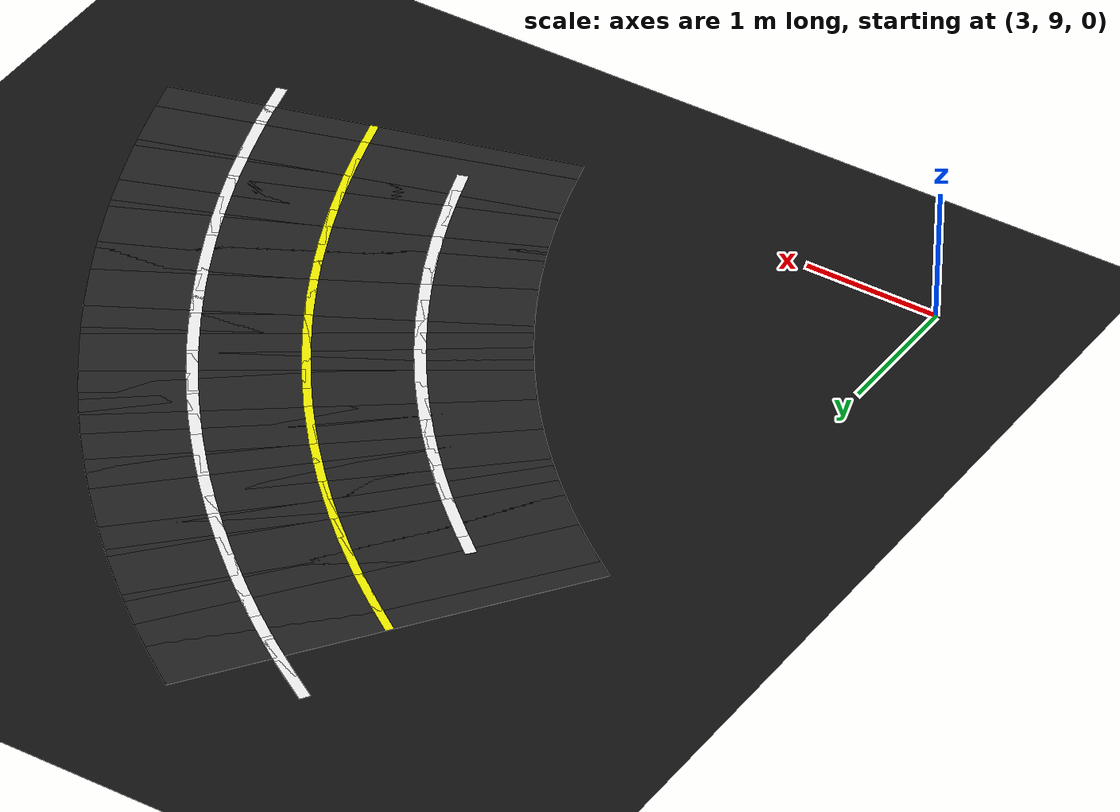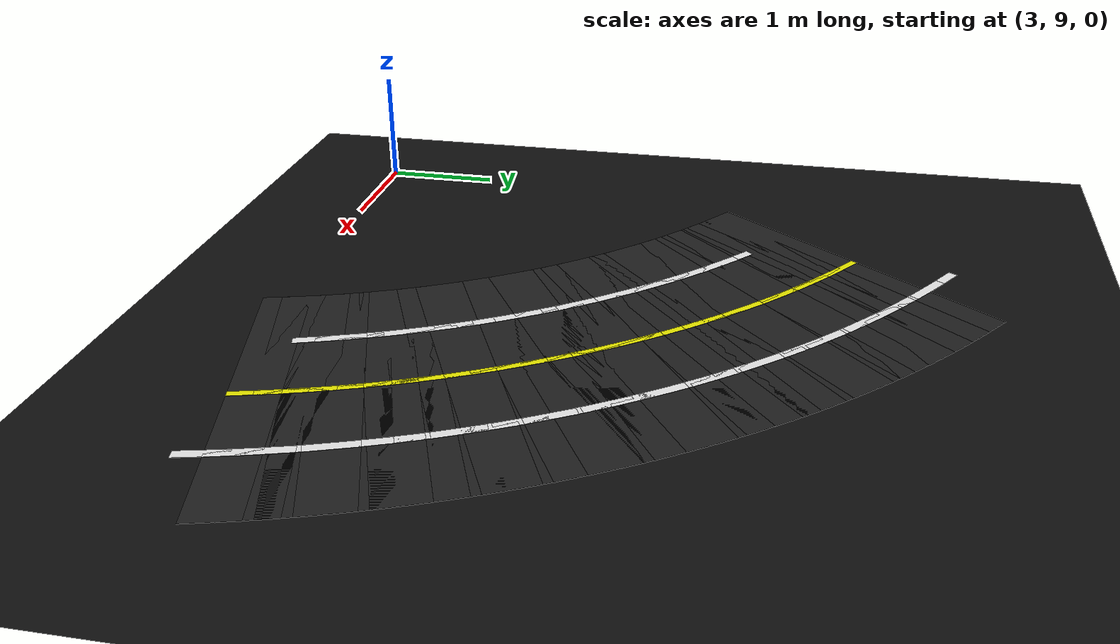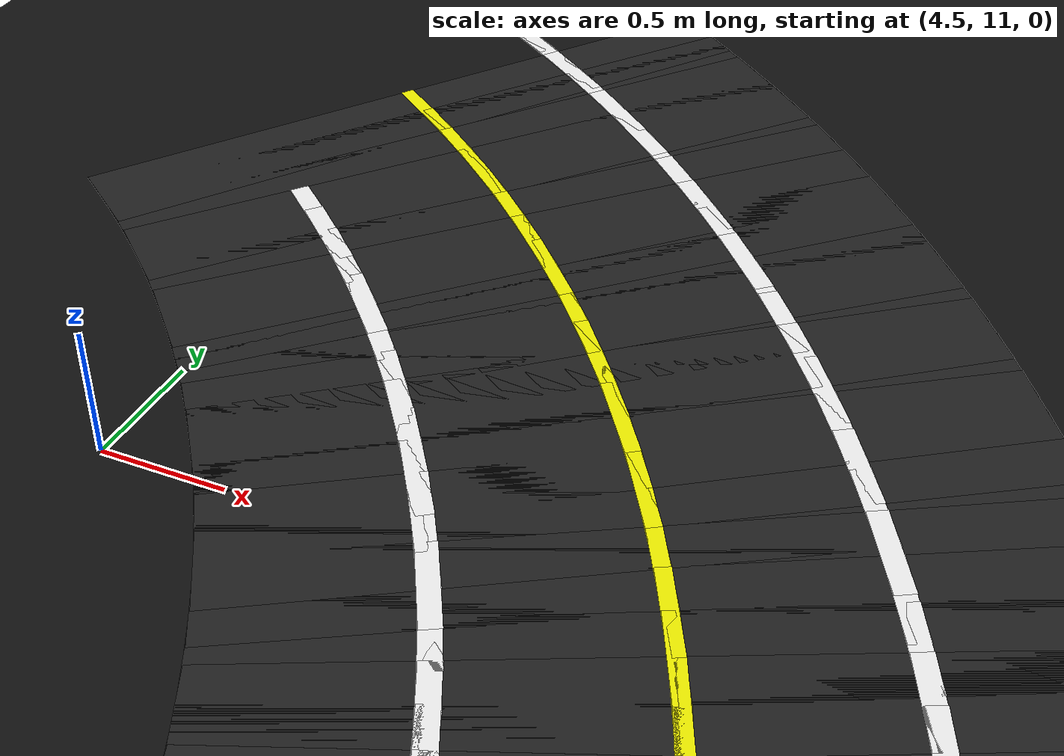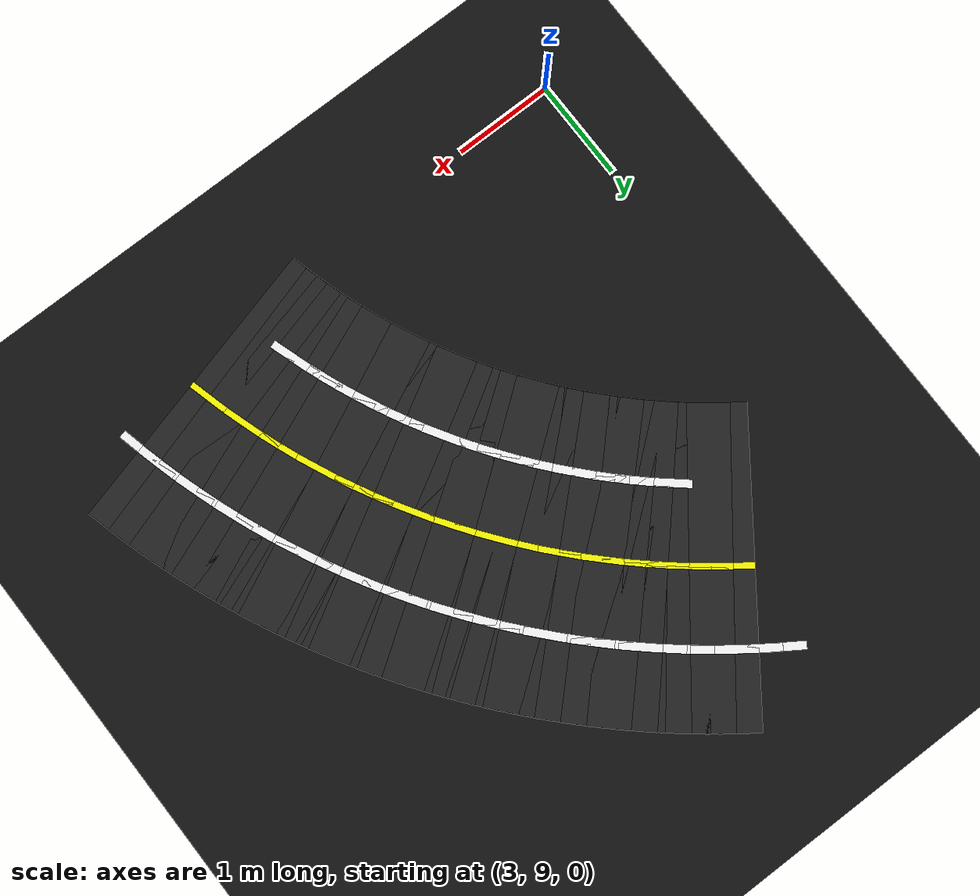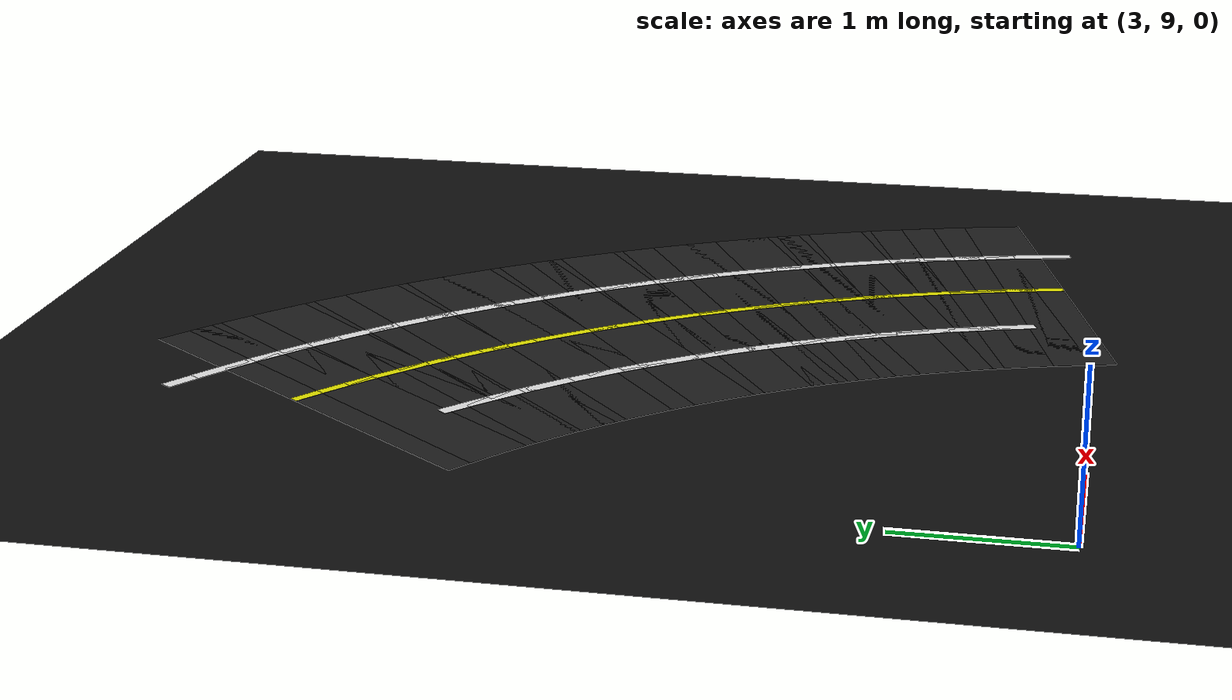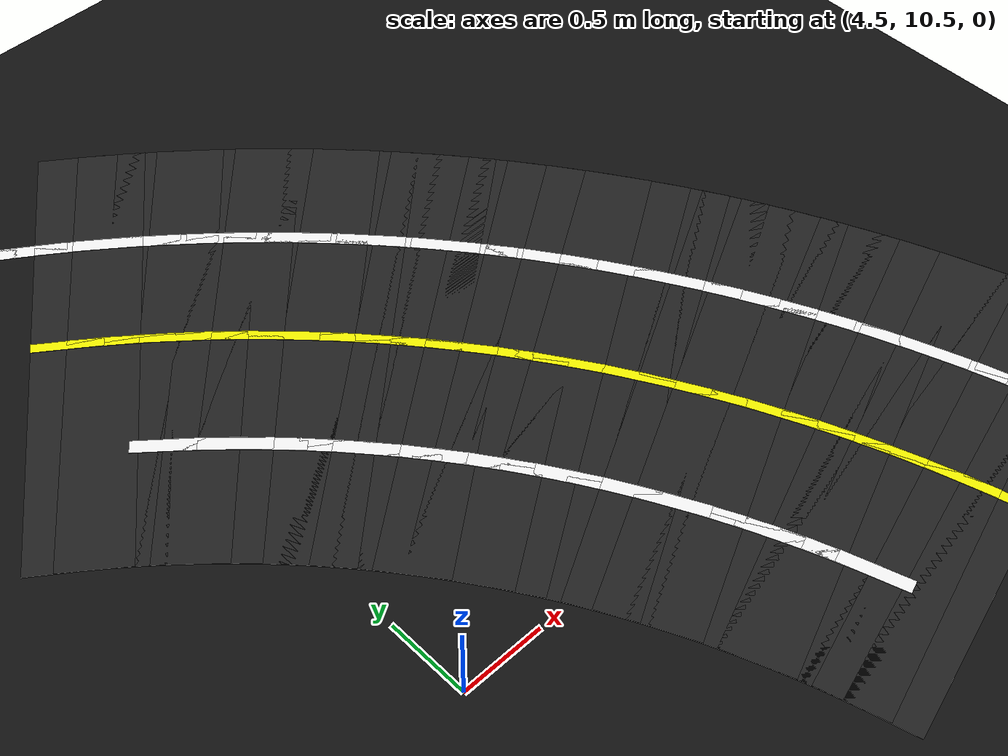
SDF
<sdf version="1.6">
 <world name="figure8_world">
  <model name="ground_plane">
   <static>true</static>
   <link name="link">
    <collision name="collision">
     <geometry><plane><normal>0 0 1</normal><size>120 120</size></plane></geometry>
    </collision>
    <visual name="visual">
     <geometry><plane><normal>0 0 1</normal><size>120 120</size></plane></geometry>
     <material><ambient>0.08 0.08 0.08 1</ambient><diffuse>0.08 0.08 0.08 1</diffuse></material>
    </visual>
   </link>
  </model>
  <model name="seg_00037">
   <static>true</static>
   <pose>8.0221 9.4259 0.0030 0 0 1.8064</pose>
   <link name="link">
    <collision name="collision"><geometry><box><size>0.4000 0.0800 0.002</size></box></geometry></collision>
    <visual name="visual">
     <geometry><box><size>0.4000 0.0800 0.002</size></box></geometry>
     <material><ambient>1 1 1 1</ambient><diffuse>1 1 1 1</diffuse></material>
    </visual>
   </link>
  </model>
  <model name="seg_00040">
   <static>true</static>
   <pose>7.2444 9.4411 0.0010 0 0 1.8326</pose>
   <link name="link">
    <collision name="collision"><geometry><box><size>0.4000 3.0000 0.002</size></box></geometry></collision>
    <visual name="visual">
     <geometry><box><size>0.4000 3.0000 0.002</size></box></geometry>
     <material><ambient>0.14 0.14 0.14 1</ambient><diffuse>0.14 0.14 0.14 1</diffuse></material>
    </visual>
   </link>
  </model>
  <model name="seg_00041">
   <static>true</static>
   <pose>7.9689 9.6353 0.0030 0 0 1.8326</pose>
   <link name="link">
    <collision name="collision"><geometry><box><size>0.4000 0.0800 0.002</size></box></geometry></collision>
    <visual name="visual">
     <geometry><box><size>0.4000 0.0800 0.002</size></box></geometry>
     <material><ambient>1 1 1 1</ambient><diffuse>1 1 1 1</diffuse></material>
    </visual>
   </link>
  </model>
  <model name="seg_00043">
   <static>true</static>
   <pose>7.2444 9.4411 0.0030 0 0 1.8326</pose>
   <link name="link">
    <collision name="collision"><geometry><box><size>0.4000 0.0600 0.002</size></box></geometry></collision>
    <visual name="visual">
     <geometry><box><size>0.4000 0.0600 0.002</size></box></geometry>
     <material><ambient>1 1 0 1</ambient><diffuse>1 1 0 1</diffuse></material>
    </visual>
   </link>
  </model>
  <model name="seg_00044">
   <static>true</static>
   <pose>7.1911 9.6301 0.0010 0 0 1.8588</pose>
   <link name="link">
    <collision name="collision"><geometry><box><size>0.4000 3.0000 0.002</size></box></geometry></collision>
    <visual name="visual">
     <geometry><box><size>0.4000 3.0000 0.002</size></box></geometry>
     <material><ambient>0.14 0.14 0.14 1</ambient><diffuse>0.14 0.14 0.14 1</diffuse></material>
    </visual>
   </link>
  </model>
  <model name="seg_00045">
   <static>true</static>
   <pose>7.9103 9.8431 0.0030 0 0 1.8588</pose>
   <link name="link">
    <collision name="collision"><geometry><box><size>0.4000 0.0800 0.002</size></box></geometry></collision>
    <visual name="visual">
     <geometry><box><size>0.4000 0.0800 0.002</size></box></geometry>
     <material><ambient>1 1 1 1</ambient><diffuse>1 1 1 1</diffuse></material>
    </visual>
   </link>
  </model>
  <model name="seg_00047">
   <static>true</static>
   <pose>7.1911 9.6301 0.0030 0 0 1.8588</pose>
   <link name="link">
    <collision name="collision"><geometry><box><size>0.4000 0.0600 0.002</size></box></geometry></collision>
    <visual name="visual">
     <geometry><box><size>0.4000 0.0600 0.002</size></box></geometry>
     <material><ambient>1 1 0 1</ambient><diffuse>1 1 0 1</diffuse></material>
    </visual>
   </link>
  </model>
  <model name="seg_00048">
   <static>true</static>
   <pose>7.1329 9.8176 0.0010 0 0 1.8850</pose>
   <link name="link">
    <collision name="collision"><geometry><box><size>0.4000 3.0000 0.002</size></box></geometry></collision>
    <visual name="visual">
     <geometry><box><size>0.4000 3.0000 0.002</size></box></geometry>
     <material><ambient>0.14 0.14 0.14 1</ambient><diffuse>0.14 0.14 0.14 1</diffuse></material>
    </visual>
   </link>
  </model>
  <model name="seg_00049">
   <static>true</static>
   <pose>7.8462 10.0494 0.0030 0 0 1.8850</pose>
   <link name="link">
    <collision name="collision"><geometry><box><size>0.4000 0.0800 0.002</size></box></geometry></collision>
    <visual name="visual">
     <geometry><box><size>0.4000 0.0800 0.002</size></box></geometry>
     <material><ambient>1 1 1 1</ambient><diffuse>1 1 1 1</diffuse></material>
    </visual>
   </link>
  </model>
  <model name="seg_00050">
   <static>true</static>
   <pose>6.4196 9.5859 0.0030 0 0 1.8850</pose>
   <link name="link">
    <collision name="collision"><geometry><box><size>0.4000 0.0800 0.002</size></box></geometry></collision>
    <visual name="visual">
     <geometry><box><size>0.4000 0.0800 0.002</size></box></geometry>
     <material><ambient>1 1 1 1</ambient><diffuse>1 1 1 1</diffuse></material>
    </visual>
   </link>
  </model>
  <model name="seg_00051">
   <static>true</static>
   <pose>7.1329 9.8176 0.0030 0 0 1.8850</pose>
   <link name="link">
    <collision name="collision"><geometry><box><size>0.4000 0.0600 0.002</size></box></geometry></collision>
    <visual name="visual">
     <geometry><box><size>0.4000 0.0600 0.002</size></box></geometry>
     <material><ambient>1 1 0 1</ambient><diffuse>1 1 0 1</diffuse></material>
    </visual>
   </link>
  </model>
  <model name="seg_00052">
   <static>true</static>
   <pose>7.0698 10.0036 0.0010 0 0 1.9111</pose>
   <link name="link">
    <collision name="collision"><geometry><box><size>0.4000 3.0000 0.002</size></box></geometry></collision>
    <visual name="visual">
     <geometry><box><size>0.4000 3.0000 0.002</size></box></geometry>
     <material><ambient>0.14 0.14 0.14 1</ambient><diffuse>0.14 0.14 0.14 1</diffuse></material>
    </visual>
   </link>
  </model>
  <model name="seg_00053">
   <static>true</static>
   <pose>7.7768 10.2539 0.0030 0 0 1.9111</pose>
   <link name="link">
    <collision name="collision"><geometry><box><size>0.4000 0.0800 0.002</size></box></geometry></collision>
    <visual name="visual">
     <geometry><box><size>0.4000 0.0800 0.002</size></box></geometry>
     <material><ambient>1 1 1 1</ambient><diffuse>1 1 1 1</diffuse></material>
    </visual>
   </link>
  </model>
  <model name="seg_00054">
   <static>true</static>
   <pose>6.3628 9.7532 0.0030 0 0 1.9111</pose>
   <link name="link">
    <collision name="collision"><geometry><box><size>0.4000 0.0800 0.002</size></box></geometry></collision>
    <visual name="visual">
     <geometry><box><size>0.4000 0.0800 0.002</size></box></geometry>
     <material><ambient>1 1 1 1</ambient><diffuse>1 1 1 1</diffuse></material>
    </visual>
   </link>
  </model>
  <model name="seg_00055">
   <static>true</static>
   <pose>7.0698 10.0036 0.0030 0 0 1.9111</pose>
   <link name="link">
    <collision name="collision"><geometry><box><size>0.4000 0.0600 0.002</size></box></geometry></collision>
    <visual name="visual">
     <geometry><box><size>0.4000 0.0600 0.002</size></box></geometry>
     <material><ambient>1 1 0 1</ambient><diffuse>1 1 0 1</diffuse></material>
    </visual>
   </link>
  </model>
  <model name="seg_00056">
   <static>true</static>
   <pose>7.0019 10.1878 0.0010 0 0 1.9373</pose>
   <link name="link">
    <collision name="collision"><geometry><box><size>0.4000 3.0000 0.002</size></box></geometry></collision>
    <visual name="visual">
     <geometry><box><size>0.4000 3.0000 0.002</size></box></geometry>
     <material><ambient>0.14 0.14 0.14 1</ambient><diffuse>0.14 0.14 0.14 1</diffuse></material>
    </visual>
   </link>
  </model>
  <model name="seg_00057">
   <static>true</static>
   <pose>7.7020 10.4565 0.0030 0 0 1.9373</pose>
   <link name="link">
    <collision name="collision"><geometry><box><size>0.4000 0.0800 0.002</size></box></geometry></collision>
    <visual name="visual">
     <geometry><box><size>0.4000 0.0800 0.002</size></box></geometry>
     <material><ambient>1 1 1 1</ambient><diffuse>1 1 1 1</diffuse></material>
    </visual>
   </link>
  </model>
  <model name="seg_00058">
   <static>true</static>
   <pose>6.3017 9.9190 0.0030 0 0 1.9373</pose>
   <link name="link">
    <collision name="collision"><geometry><box><size>0.4000 0.0800 0.002</size></box></geometry></collision>
    <visual name="visual">
     <geometry><box><size>0.4000 0.0800 0.002</size></box></geometry>
     <material><ambient>1 1 1 1</ambient><diffuse>1 1 1 1</diffuse></material>
    </visual>
   </link>
  </model>
  <model name="seg_00059">
   <static>true</static>
   <pose>7.0019 10.1878 0.0030 0 0 1.9373</pose>
   <link name="link">
    <collision name="collision"><geometry><box><size>0.4000 0.0600 0.002</size></box></geometry></collision>
    <visual name="visual">
     <geometry><box><size>0.4000 0.0600 0.002</size></box></geometry>
     <material><ambient>1 1 0 1</ambient><diffuse>1 1 0 1</diffuse></material>
    </visual>
   </link>
  </model>
  <model name="seg_00060">
   <static>true</static>
   <pose>6.9291 10.3701 0.0010 0 0 1.9635</pose>
   <link name="link">
    <collision name="collision"><geometry><box><size>0.4000 3.0000 0.002</size></box></geometry></collision>
    <visual name="visual">
     <geometry><box><size>0.4000 3.0000 0.002</size></box></geometry>
     <material><ambient>0.14 0.14 0.14 1</ambient><diffuse>0.14 0.14 0.14 1</diffuse></material>
    </visual>
   </link>
  </model>
  <model name="seg_00061">
   <static>true</static>
   <pose>7.6220 10.6571 0.0030 0 0 1.9635</pose>
   <link name="link">
    <collision name="collision"><geometry><box><size>0.4000 0.0800 0.002</size></box></geometry></collision>
    <visual name="visual">
     <geometry><box><size>0.4000 0.0800 0.002</size></box></geometry>
     <material><ambient>1 1 1 1</ambient><diffuse>1 1 1 1</diffuse></material>
    </visual>
   </link>
  </model>
  <model name="seg_00062">
   <static>true</static>
   <pose>6.2362 10.0831 0.0030 0 0 1.9635</pose>
   <link name="link">
    <collision name="collision"><geometry><box><size>0.4000 0.0800 0.002</size></box></geometry></collision>
    <visual name="visual">
     <geometry><box><size>0.4000 0.0800 0.002</size></box></geometry>
     <material><ambient>1 1 1 1</ambient><diffuse>1 1 1 1</diffuse></material>
    </visual>
   </link>
  </model>
  <model name="seg_00063">
   <static>true</static>
   <pose>6.9291 10.3701 0.0030 0 0 1.9635</pose>
   <link name="link">
    <collision name="collision"><geometry><box><size>0.4000 0.0600 0.002</size></box></geometry></collision>
    <visual name="visual">
     <geometry><box><size>0.4000 0.0600 0.002</size></box></geometry>
     <material><ambient>1 1 0 1</ambient><diffuse>1 1 0 1</diffuse></material>
    </visual>
   </link>
  </model>
  <model name="seg_00064">
   <static>true</static>
   <pose>6.8516 10.5505 0.0010 0 0 1.9897</pose>
   <link name="link">
    <collision name="collision"><geometry><box><size>0.4000 3.0000 0.002</size></box></geometry></collision>
    <visual name="visual">
     <geometry><box><size>0.4000 3.0000 0.002</size></box></geometry>
     <material><ambient>0.14 0.14 0.14 1</ambient><diffuse>0.14 0.14 0.14 1</diffuse></material>
    </visual>
   </link>
  </model>
  <model name="seg_00065">
   <static>true</static>
   <pose>7.5368 10.8556 0.0030 0 0 1.9897</pose>
   <link name="link">
    <collision name="collision"><geometry><box><size>0.4000 0.0800 0.002</size></box></geometry></collision>
    <visual name="visual">
     <geometry><box><size>0.4000 0.0800 0.002</size></box></geometry>
     <material><ambient>1 1 1 1</ambient><diffuse>1 1 1 1</diffuse></material>
    </visual>
   </link>
  </model>
  <model name="seg_00066">
   <static>true</static>
   <pose>6.1664 10.2455 0.0030 0 0 1.9897</pose>
   <link name="link">
    <collision name="collision"><geometry><box><size>0.4000 0.0800 0.002</size></box></geometry></collision>
    <visual name="visual">
     <geometry><box><size>0.4000 0.0800 0.002</size></box></geometry>
     <material><ambient>1 1 1 1</ambient><diffuse>1 1 1 1</diffuse></material>
    </visual>
   </link>
  </model>
  <model name="seg_00067">
   <static>true</static>
   <pose>6.8516 10.5505 0.0030 0 0 1.9897</pose>
   <link name="link">
    <collision name="collision"><geometry><box><size>0.4000 0.0600 0.002</size></box></geometry></collision>
    <visual name="visual">
     <geometry><box><size>0.4000 0.0600 0.002</size></box></geometry>
     <material><ambient>1 1 0 1</ambient><diffuse>1 1 0 1</diffuse></material>
    </visual>
   </link>
  </model>
  <model name="seg_00068">
   <static>true</static>
   <pose>6.7694 10.7288 0.0010 0 0 2.0159</pose>
   <link name="link">
    <collision name="collision"><geometry><box><size>0.4000 3.0000 0.002</size></box></geometry></collision>
    <visual name="visual">
     <geometry><box><size>0.4000 3.0000 0.002</size></box></geometry>
     <material><ambient>0.14 0.14 0.14 1</ambient><diffuse>0.14 0.14 0.14 1</diffuse></material>
    </visual>
   </link>
  </model>
  <model name="seg_00069">
   <static>true</static>
   <pose>7.4463 11.0517 0.0030 0 0 2.0159</pose>
   <link name="link">
    <collision name="collision"><geometry><box><size>0.4000 0.0800 0.002</size></box></geometry></collision>
    <visual name="visual">
     <geometry><box><size>0.4000 0.0800 0.002</size></box></geometry>
     <material><ambient>1 1 1 1</ambient><diffuse>1 1 1 1</diffuse></material>
    </visual>
   </link>
  </model>
  <model name="seg_00070">
   <static>true</static>
   <pose>6.0925 10.4059 0.0030 0 0 2.0159</pose>
   <link name="link">
    <collision name="collision"><geometry><box><size>0.4000 0.0800 0.002</size></box></geometry></collision>
    <visual name="visual">
     <geometry><box><size>0.4000 0.0800 0.002</size></box></geometry>
     <material><ambient>1 1 1 1</ambient><diffuse>1 1 1 1</diffuse></material>
    </visual>
   </link>
  </model>
  <model name="seg_00071">
   <static>true</static>
   <pose>6.7694 10.7288 0.0030 0 0 2.0159</pose>
   <link name="link">
    <collision name="collision"><geometry><box><size>0.4000 0.0600 0.002</size></box></geometry></collision>
    <visual name="visual">
     <geometry><box><size>0.4000 0.0600 0.002</size></box></geometry>
     <material><ambient>1 1 0 1</ambient><diffuse>1 1 0 1</diffuse></material>
    </visual>
   </link>
  </model>
  <model name="seg_00072">
   <static>true</static>
   <pose>6.6825 10.9049 0.0010 0 0 2.0420</pose>
   <link name="link">
    <collision name="collision"><geometry><box><size>0.4000 3.0000 0.002</size></box></geometry></collision>
    <visual name="visual">
     <geometry><box><size>0.4000 3.0000 0.002</size></box></geometry>
     <material><ambient>0.14 0.14 0.14 1</ambient><diffuse>0.14 0.14 0.14 1</diffuse></material>
    </visual>
   </link>
  </model>
  <model name="seg_00073">
   <static>true</static>
   <pose>7.3508 11.2454 0.0030 0 0 2.0420</pose>
   <link name="link">
    <collision name="collision"><geometry><box><size>0.4000 0.0800 0.002</size></box></geometry></collision>
    <visual name="visual">
     <geometry><box><size>0.4000 0.0800 0.002</size></box></geometry>
     <material><ambient>1 1 1 1</ambient><diffuse>1 1 1 1</diffuse></material>
    </visual>
   </link>
  </model>
  <model name="seg_00074">
   <static>true</static>
   <pose>6.0143 10.5644 0.0030 0 0 2.0420</pose>
   <link name="link">
    <collision name="collision"><geometry><box><size>0.4000 0.0800 0.002</size></box></geometry></collision>
    <visual name="visual">
     <geometry><box><size>0.4000 0.0800 0.002</size></box></geometry>
     <material><ambient>1 1 1 1</ambient><diffuse>1 1 1 1</diffuse></material>
    </visual>
   </link>
  </model>
  <model name="seg_00075">
   <static>true</static>
   <pose>6.6825 10.9049 0.0030 0 0 2.0420</pose>
   <link name="link">
    <collision name="collision"><geometry><box><size>0.4000 0.0600 0.002</size></box></geometry></collision>
    <visual name="visual">
     <geometry><box><size>0.4000 0.0600 0.002</size></box></geometry>
     <material><ambient>1 1 0 1</ambient><diffuse>1 1 0 1</diffuse></material>
    </visual>
   </link>
  </model>
  <model name="seg_00076">
   <static>true</static>
   <pose>6.5911 11.0787 0.0010 0 0 2.0682</pose>
   <link name="link">
    <collision name="collision"><geometry><box><size>0.4000 3.0000 0.002</size></box></geometry></collision>
    <visual name="visual">
     <geometry><box><size>0.4000 3.0000 0.002</size></box></geometry>
     <material><ambient>0.14 0.14 0.14 1</ambient><diffuse>0.14 0.14 0.14 1</diffuse></material>
    </visual>
   </link>
  </model>
  <model name="seg_00077">
   <static>true</static>
   <pose>7.2502 11.4366 0.0030 0 0 2.0682</pose>
   <link name="link">
    <collision name="collision"><geometry><box><size>0.4000 0.0800 0.002</size></box></geometry></collision>
    <visual name="visual">
     <geometry><box><size>0.4000 0.0800 0.002</size></box></geometry>
     <material><ambient>1 1 1 1</ambient><diffuse>1 1 1 1</diffuse></material>
    </visual>
   </link>
  </model>
  <model name="seg_00078">
   <static>true</static>
   <pose>5.9320 10.7208 0.0030 0 0 2.0682</pose>
   <link name="link">
    <collision name="collision"><geometry><box><size>0.4000 0.0800 0.002</size></box></geometry></collision>
    <visual name="visual">
     <geometry><box><size>0.4000 0.0800 0.002</size></box></geometry>
     <material><ambient>1 1 1 1</ambient><diffuse>1 1 1 1</diffuse></material>
    </visual>
   </link>
  </model>
  <model name="seg_00079">
   <static>true</static>
   <pose>6.5911 11.0787 0.0030 0 0 2.0682</pose>
   <link name="link">
    <collision name="collision"><geometry><box><size>0.4000 0.0600 0.002</size></box></geometry></collision>
    <visual name="visual">
     <geometry><box><size>0.4000 0.0600 0.002</size></box></geometry>
     <material><ambient>1 1 0 1</ambient><diffuse>1 1 0 1</diffuse></material>
    </visual>
   </link>
  </model>
  <model name="seg_00080">
   <static>true</static>
   <pose>6.4952 11.2500 0.0010 0 0 2.0944</pose>
   <link name="link">
    <collision name="collision"><geometry><box><size>0.4000 3.0000 0.002</size></box></geometry></collision>
    <visual name="visual">
     <geometry><box><size>0.4000 3.0000 0.002</size></box></geometry>
     <material><ambient>0.14 0.14 0.14 1</ambient><diffuse>0.14 0.14 0.14 1</diffuse></material>
    </visual>
   </link>
  </model>
  <model name="seg_00081">
   <static>true</static>
   <pose>7.1447 11.6250 0.0030 0 0 2.0944</pose>
   <link name="link">
    <collision name="collision"><geometry><box><size>0.4000 0.0800 0.002</size></box></geometry></collision>
    <visual name="visual">
     <geometry><box><size>0.4000 0.0800 0.002</size></box></geometry>
     <material><ambient>1 1 1 1</ambient><diffuse>1 1 1 1</diffuse></material>
    </visual>
   </link>
  </model>
  <model name="seg_00082">
   <static>true</static>
   <pose>5.8457 10.8750 0.0030 0 0 2.0944</pose>
   <link name="link">
    <collision name="collision"><geometry><box><size>0.4000 0.0800 0.002</size></box></geometry></collision>
    <visual name="visual">
     <geometry><box><size>0.4000 0.0800 0.002</size></box></geometry>
     <material><ambient>1 1 1 1</ambient><diffuse>1 1 1 1</diffuse></material>
    </visual>
   </link>
  </model>
  <model name="seg_00083">
   <static>true</static>
   <pose>6.4952 11.2500 0.0030 0 0 2.0944</pose>
   <link name="link">
    <collision name="collision"><geometry><box><size>0.4000 0.0600 0.002</size></box></geometry></collision>
    <visual name="visual">
     <geometry><box><size>0.4000 0.0600 0.002</size></box></geometry>
     <material><ambient>1 1 0 1</ambient><diffuse>1 1 0 1</diffuse></material>
    </visual>
   </link>
  </model>
  <model name="seg_00084">
   <static>true</static>
   <pose>6.3948 11.4187 0.0010 0 0 2.1206</pose>
   <link name="link">
    <collision name="collision"><geometry><box><size>0.4000 3.0000 0.002</size></box></geometry></collision>
    <visual name="visual">
     <geometry><box><size>0.4000 3.0000 0.002</size></box></geometry>
     <material><ambient>0.14 0.14 0.14 1</ambient><diffuse>0.14 0.14 0.14 1</diffuse></material>
    </visual>
   </link>
  </model>
  <model name="seg_00085">
   <static>true</static>
   <pose>7.0343 11.8106 0.0030 0 0 2.1206</pose>
   <link name="link">
    <collision name="collision"><geometry><box><size>0.4000 0.0800 0.002</size></box></geometry></collision>
    <visual name="visual">
     <geometry><box><size>0.4000 0.0800 0.002</size></box></geometry>
     <material><ambient>1 1 1 1</ambient><diffuse>1 1 1 1</diffuse></material>
    </visual>
   </link>
  </model>
  <model name="seg_00086">
   <static>true</static>
   <pose>5.7553 11.0269 0.0030 0 0 2.1206</pose>
   <link name="link">
    <collision name="collision"><geometry><box><size>0.4000 0.0800 0.002</size></box></geometry></collision>
    <visual name="visual">
     <geometry><box><size>0.4000 0.0800 0.002</size></box></geometry>
     <material><ambient>1 1 1 1</ambient><diffuse>1 1 1 1</diffuse></material>
    </visual>
   </link>
  </model>
  <model name="seg_00087">
   <static>true</static>
   <pose>6.3948 11.4187 0.0030 0 0 2.1206</pose>
   <link name="link">
    <collision name="collision"><geometry><box><size>0.4000 0.0600 0.002</size></box></geometry></collision>
    <visual name="visual">
     <geometry><box><size>0.4000 0.0600 0.002</size></box></geometry>
     <material><ambient>1 1 0 1</ambient><diffuse>1 1 0 1</diffuse></material>
    </visual>
   </link>
  </model>
  <model name="seg_00088">
   <static>true</static>
   <pose>6.2900 11.5848 0.0010 0 0 2.1468</pose>
   <link name="link">
    <collision name="collision"><geometry><box><size>0.4000 3.0000 0.002</size></box></geometry></collision>
    <visual name="visual">
     <geometry><box><size>0.4000 3.0000 0.002</size></box></geometry>
     <material><ambient>0.14 0.14 0.14 1</ambient><diffuse>0.14 0.14 0.14 1</diffuse></material>
    </visual>
   </link>
  </model>
  <model name="seg_00089">
   <static>true</static>
   <pose>6.9190 11.9933 0.0030 0 0 2.1468</pose>
   <link name="link">
    <collision name="collision"><geometry><box><size>0.4000 0.0800 0.002</size></box></geometry></collision>
    <visual name="visual">
     <geometry><box><size>0.4000 0.0800 0.002</size></box></geometry>
     <material><ambient>1 1 1 1</ambient><diffuse>1 1 1 1</diffuse></material>
    </visual>
   </link>
  </model>
  <model name="seg_00090">
   <static>true</static>
   <pose>5.6610 11.1763 0.0030 0 0 2.1468</pose>
   <link name="link">
    <collision name="collision"><geometry><box><size>0.4000 0.0800 0.002</size></box></geometry></collision>
    <visual name="visual">
     <geometry><box><size>0.4000 0.0800 0.002</size></box></geometry>
     <material><ambient>1 1 1 1</ambient><diffuse>1 1 1 1</diffuse></material>
    </visual>
   </link>
  </model>
  <model name="seg_00091">
   <static>true</static>
   <pose>6.2900 11.5848 0.0030 0 0 2.1468</pose>
   <link name="link">
    <collision name="collision"><geometry><box><size>0.4000 0.0600 0.002</size></box></geometry></collision>
    <visual name="visual">
     <geometry><box><size>0.4000 0.0600 0.002</size></box></geometry>
     <material><ambient>1 1 0 1</ambient><diffuse>1 1 0 1</diffuse></material>
    </visual>
   </link>
  </model>
  <model name="seg_00092">
   <static>true</static>
   <pose>6.1809 11.7480 0.0010 0 0 2.1729</pose>
   <link name="link">
    <collision name="collision"><geometry><box><size>0.4000 3.0000 0.002</size></box></geometry></collision>
    <visual name="visual">
     <geometry><box><size>0.4000 3.0000 0.002</size></box></geometry>
     <material><ambient>0.14 0.14 0.14 1</ambient><diffuse>0.14 0.14 0.14 1</diffuse></material>
    </visual>
   </link>
  </model>
  <model name="seg_00093">
   <static>true</static>
   <pose>6.7990 12.1729 0.0030 0 0 2.1729</pose>
   <link name="link">
    <collision name="collision"><geometry><box><size>0.4000 0.0800 0.002</size></box></geometry></collision>
    <visual name="visual">
     <geometry><box><size>0.4000 0.0800 0.002</size></box></geometry>
     <material><ambient>1 1 1 1</ambient><diffuse>1 1 1 1</diffuse></material>
    </visual>
   </link>
  </model>
  <model name="seg_00094">
   <static>true</static>
   <pose>5.5629 11.3232 0.0030 0 0 2.1729</pose>
   <link name="link">
    <collision name="collision"><geometry><box><size>0.4000 0.0800 0.002</size></box></geometry></collision>
    <visual name="visual">
     <geometry><box><size>0.4000 0.0800 0.002</size></box></geometry>
     <material><ambient>1 1 1 1</ambient><diffuse>1 1 1 1</diffuse></material>
    </visual>
   </link>
  </model>
  <model name="seg_00095">
   <static>true</static>
   <pose>6.1809 11.7480 0.0030 0 0 2.1729</pose>
   <link name="link">
    <collision name="collision"><geometry><box><size>0.4000 0.0600 0.002</size></box></geometry></collision>
    <visual name="visual">
     <geometry><box><size>0.4000 0.0600 0.002</size></box></geometry>
     <material><ambient>1 1 0 1</ambient><diffuse>1 1 0 1</diffuse></material>
    </visual>
   </link>
  </model>
  <model name="seg_00096">
   <static>true</static>
   <pose>6.0676 11.9084 0.0010 0 0 2.1991</pose>
   <link name="link">
    <collision name="collision"><geometry><box><size>0.4000 3.0000 0.002</size></box></geometry></collision>
    <visual name="visual">
     <geometry><box><size>0.4000 3.0000 0.002</size></box></geometry>
     <material><ambient>0.14 0.14 0.14 1</ambient><diffuse>0.14 0.14 0.14 1</diffuse></material>
    </visual>
   </link>
  </model>
  <model name="seg_00097">
   <static>true</static>
   <pose>6.6744 12.3492 0.0030 0 0 2.1991</pose>
   <link name="link">
    <collision name="collision"><geometry><box><size>0.4000 0.0800 0.002</size></box></geometry></collision>
    <visual name="visual">
     <geometry><box><size>0.4000 0.0800 0.002</size></box></geometry>
     <material><ambient>1 1 1 1</ambient><diffuse>1 1 1 1</diffuse></material>
    </visual>
   </link>
  </model>
  <model name="seg_00098">
   <static>true</static>
   <pose>5.4609 11.4676 0.0030 0 0 2.1991</pose>
   <link name="link">
    <collision name="collision"><geometry><box><size>0.4000 0.0800 0.002</size></box></geometry></collision>
    <visual name="visual">
     <geometry><box><size>0.4000 0.0800 0.002</size></box></geometry>
     <material><ambient>1 1 1 1</ambient><diffuse>1 1 1 1</diffuse></material>
    </visual>
   </link>
  </model>
  <model name="seg_00099">
   <static>true</static>
   <pose>6.0676 11.9084 0.0030 0 0 2.1991</pose>
   <link name="link">
    <collision name="collision"><geometry><box><size>0.4000 0.0600 0.002</size></box></geometry></collision>
    <visual name="visual">
     <geometry><box><size>0.4000 0.0600 0.002</size></box></geometry>
     <material><ambient>1 1 0 1</ambient><diffuse>1 1 0 1</diffuse></material>
    </visual>
   </link>
  </model>
  <model name="seg_00100">
   <static>true</static>
   <pose>5.9502 12.0657 0.0010 0 0 2.2253</pose>
   <link name="link">
    <collision name="collision"><geometry><box><size>0.4000 3.0000 0.002</size></box></geometry></collision>
    <visual name="visual">
     <geometry><box><size>0.4000 3.0000 0.002</size></box></geometry>
     <material><ambient>0.14 0.14 0.14 1</ambient><diffuse>0.14 0.14 0.14 1</diffuse></material>
    </visual>
   </link>
  </model>
  <model name="seg_00101">
   <static>true</static>
   <pose>6.5452 12.5223 0.0030 0 0 2.2253</pose>
   <link name="link">
    <collision name="collision"><geometry><box><size>0.4000 0.0800 0.002</size></box></geometry></collision>
    <visual name="visual">
     <geometry><box><size>0.4000 0.0800 0.002</size></box></geometry>
     <material><ambient>1 1 1 1</ambient><diffuse>1 1 1 1</diffuse></material>
    </visual>
   </link>
  </model>
  <model name="seg_00102">
   <static>true</static>
   <pose>5.3551 11.6091 0.0030 0 0 2.2253</pose>
   <link name="link">
    <collision name="collision"><geometry><box><size>0.4000 0.0800 0.002</size></box></geometry></collision>
    <visual name="visual">
     <geometry><box><size>0.4000 0.0800 0.002</size></box></geometry>
     <material><ambient>1 1 1 1</ambient><diffuse>1 1 1 1</diffuse></material>
    </visual>
   </link>
  </model>
  <model name="seg_00103">
   <static>true</static>
   <pose>5.9502 12.0657 0.0030 0 0 2.2253</pose>
   <link name="link">
    <collision name="collision"><geometry><box><size>0.4000 0.0600 0.002</size></box></geometry></collision>
    <visual name="visual">
     <geometry><box><size>0.4000 0.0600 0.002</size></box></geometry>
     <material><ambient>1 1 0 1</ambient><diffuse>1 1 0 1</diffuse></material>
    </visual>
   </link>
  </model>
  <model name="seg_00104">
   <static>true</static>
   <pose>5.8286 12.2199 0.0010 0 0 2.2515</pose>
   <link name="link">
    <collision name="collision"><geometry><box><size>0.4000 3.0000 0.002</size></box></geometry></collision>
    <visual name="visual">
     <geometry><box><size>0.4000 3.0000 0.002</size></box></geometry>
     <material><ambient>0.14 0.14 0.14 1</ambient><diffuse>0.14 0.14 0.14 1</diffuse></material>
    </visual>
   </link>
  </model>
  <model name="seg_00105">
   <static>true</static>
   <pose>6.4115 12.6919 0.0030 0 0 2.2515</pose>
   <link name="link">
    <collision name="collision"><geometry><box><size>0.4000 0.0800 0.002</size></box></geometry></collision>
    <visual name="visual">
     <geometry><box><size>0.4000 0.0800 0.002</size></box></geometry>
     <material><ambient>1 1 1 1</ambient><diffuse>1 1 1 1</diffuse></material>
    </visual>
   </link>
  </model>
  <model name="seg_00106">
   <static>true</static>
   <pose>5.2457 11.7479 0.0030 0 0 2.2515</pose>
   <link name="link">
    <collision name="collision"><geometry><box><size>0.4000 0.0800 0.002</size></box></geometry></collision>
    <visual name="visual">
     <geometry><box><size>0.4000 0.0800 0.002</size></box></geometry>
     <material><ambient>1 1 1 1</ambient><diffuse>1 1 1 1</diffuse></material>
    </visual>
   </link>
  </model>
  <model name="seg_00107">
   <static>true</static>
   <pose>5.8286 12.2199 0.0030 0 0 2.2515</pose>
   <link name="link">
    <collision name="collision"><geometry><box><size>0.4000 0.0600 0.002</size></box></geometry></collision>
    <visual name="visual">
     <geometry><box><size>0.4000 0.0600 0.002</size></box></geometry>
     <material><ambient>1 1 0 1</ambient><diffuse>1 1 0 1</diffuse></material>
    </visual>
   </link>
  </model>
  <model name="seg_00108">
   <static>true</static>
   <pose>5.7030 12.3709 0.0010 0 0 2.2777</pose>
   <link name="link">
    <collision name="collision"><geometry><box><size>0.4000 3.0000 0.002</size></box></geometry></collision>
    <visual name="visual">
     <geometry><box><size>0.4000 3.0000 0.002</size></box></geometry>
     <material><ambient>0.14 0.14 0.14 1</ambient><diffuse>0.14 0.14 0.14 1</diffuse></material>
    </visual>
   </link>
  </model>
  <model name="seg_00109">
   <static>true</static>
   <pose>6.2733 12.8579 0.0030 0 0 2.2777</pose>
   <link name="link">
    <collision name="collision"><geometry><box><size>0.4000 0.0800 0.002</size></box></geometry></collision>
    <visual name="visual">
     <geometry><box><size>0.4000 0.0800 0.002</size></box></geometry>
     <material><ambient>1 1 1 1</ambient><diffuse>1 1 1 1</diffuse></material>
    </visual>
   </link>
  </model>
  <model name="seg_00110">
   <static>true</static>
   <pose>5.1327 11.8838 0.0030 0 0 2.2777</pose>
   <link name="link">
    <collision name="collision"><geometry><box><size>0.4000 0.0800 0.002</size></box></geometry></collision>
    <visual name="visual">
     <geometry><box><size>0.4000 0.0800 0.002</size></box></geometry>
     <material><ambient>1 1 1 1</ambient><diffuse>1 1 1 1</diffuse></material>
    </visual>
   </link>
  </model>
  <model name="seg_00111">
   <static>true</static>
   <pose>5.7030 12.3709 0.0030 0 0 2.2777</pose>
   <link name="link">
    <collision name="collision"><geometry><box><size>0.4000 0.0600 0.002</size></box></geometry></collision>
    <visual name="visual">
     <geometry><box><size>0.4000 0.0600 0.002</size></box></geometry>
     <material><ambient>1 1 0 1</ambient><diffuse>1 1 0 1</diffuse></material>
    </visual>
   </link>
  </model>
  <model name="seg_00112">
   <static>true</static>
   <pose>5.5736 12.5185 0.0010 0 0 2.3038</pose>
   <link name="link">
    <collision name="collision"><geometry><box><size>0.4000 3.0000 0.002</size></box></geometry></collision>
    <visual name="visual">
     <geometry><box><size>0.4000 3.0000 0.002</size></box></geometry>
     <material><ambient>0.14 0.14 0.14 1</ambient><diffuse>0.14 0.14 0.14 1</diffuse></material>
    </visual>
   </link>
  </model>
  <model name="seg_00113">
   <static>true</static>
   <pose>6.1309 13.0203 0.0030 0 0 2.3038</pose>
   <link name="link">
    <collision name="collision"><geometry><box><size>0.4000 0.0800 0.002</size></box></geometry></collision>
    <visual name="visual">
     <geometry><box><size>0.4000 0.0800 0.002</size></box></geometry>
     <material><ambient>1 1 1 1</ambient><diffuse>1 1 1 1</diffuse></material>
    </visual>
   </link>
  </model>
  <model name="seg_00114">
   <static>true</static>
   <pose>5.0162 12.0166 0.0030 0 0 2.3038</pose>
   <link name="link">
    <collision name="collision"><geometry><box><size>0.4000 0.0800 0.002</size></box></geometry></collision>
    <visual name="visual">
     <geometry><box><size>0.4000 0.0800 0.002</size></box></geometry>
     <material><ambient>1 1 1 1</ambient><diffuse>1 1 1 1</diffuse></material>
    </visual>
   </link>
  </model>
  <model name="seg_00115">
   <static>true</static>
   <pose>5.5736 12.5185 0.0030 0 0 2.3038</pose>
   <link name="link">
    <collision name="collision"><geometry><box><size>0.4000 0.0600 0.002</size></box></geometry></collision>
    <visual name="visual">
     <geometry><box><size>0.4000 0.0600 0.002</size></box></geometry>
     <material><ambient>1 1 0 1</ambient><diffuse>1 1 0 1</diffuse></material>
    </visual>
   </link>
  </model>
  <model name="seg_00116">
   <static>true</static>
   <pose>5.4403 12.6627 0.0010 0 0 2.3300</pose>
   <link name="link">
    <collision name="collision"><geometry><box><size>0.4000 3.0000 0.002</size></box></geometry></collision>
    <visual name="visual">
     <geometry><box><size>0.4000 3.0000 0.002</size></box></geometry>
     <material><ambient>0.14 0.14 0.14 1</ambient><diffuse>0.14 0.14 0.14 1</diffuse></material>
    </visual>
   </link>
  </model>
  <model name="seg_00117">
   <static>true</static>
   <pose>5.9843 13.1789 0.0030 0 0 2.3300</pose>
   <link name="link">
    <collision name="collision"><geometry><box><size>0.4000 0.0800 0.002</size></box></geometry></collision>
    <visual name="visual">
     <geometry><box><size>0.4000 0.0800 0.002</size></box></geometry>
     <material><ambient>1 1 1 1</ambient><diffuse>1 1 1 1</diffuse></material>
    </visual>
   </link>
  </model>
  <model name="seg_00118">
   <static>true</static>
   <pose>4.8963 12.1464 0.0030 0 0 2.3300</pose>
   <link name="link">
    <collision name="collision"><geometry><box><size>0.4000 0.0800 0.002</size></box></geometry></collision>
    <visual name="visual">
     <geometry><box><size>0.4000 0.0800 0.002</size></box></geometry>
     <material><ambient>1 1 1 1</ambient><diffuse>1 1 1 1</diffuse></material>
    </visual>
   </link>
  </model>
  <model name="seg_00119">
   <static>true</static>
   <pose>5.4403 12.6627 0.0030 0 0 2.3300</pose>
   <link name="link">
    <collision name="collision"><geometry><box><size>0.4000 0.0600 0.002</size></box></geometry></collision>
    <visual name="visual">
     <geometry><box><size>0.4000 0.0600 0.002</size></box></geometry>
     <material><ambient>1 1 0 1</ambient><diffuse>1 1 0 1</diffuse></material>
    </visual>
   </link>
  </model>
  <model name="seg_00120">
   <static>true</static>
   <pose>5.3033 12.8033 0.0010 0 0 2.3562</pose>
   <link name="link">
    <collision name="collision"><geometry><box><size>0.4000 3.0000 0.002</size></box></geometry></collision>
    <visual name="visual">
     <geometry><box><size>0.4000 3.0000 0.002</size></box></geometry>
     <material><ambient>0.14 0.14 0.14 1</ambient><diffuse>0.14 0.14 0.14 1</diffuse></material>
    </visual>
   </link>
  </model>
  <model name="seg_00121">
   <static>true</static>
   <pose>5.8336 13.3336 0.0030 0 0 2.3562</pose>
   <link name="link">
    <collision name="collision"><geometry><box><size>0.4000 0.0800 0.002</size></box></geometry></collision>
    <visual name="visual">
     <geometry><box><size>0.4000 0.0800 0.002</size></box></geometry>
     <material><ambient>1 1 1 1</ambient><diffuse>1 1 1 1</diffuse></material>
    </visual>
   </link>
  </model>
  <model name="seg_00122">
   <static>true</static>
   <pose>4.7730 12.2730 0.0030 0 0 2.3562</pose>
   <link name="link">
    <collision name="collision"><geometry><box><size>0.4000 0.0800 0.002</size></box></geometry></collision>
    <visual name="visual">
     <geometry><box><size>0.4000 0.0800 0.002</size></box></geometry>
     <material><ambient>1 1 1 1</ambient><diffuse>1 1 1 1</diffuse></material>
    </visual>
   </link>
  </model>
  <model name="seg_00123">
   <static>true</static>
   <pose>5.3033 12.8033 0.0030 0 0 2.3562</pose>
   <link name="link">
    <collision name="collision"><geometry><box><size>0.4000 0.0600 0.002</size></box></geometry></collision>
    <visual name="visual">
     <geometry><box><size>0.4000 0.0600 0.002</size></box></geometry>
     <material><ambient>1 1 0 1</ambient><diffuse>1 1 0 1</diffuse></material>
    </visual>
   </link>
  </model>
  <model name="seg_00124">
   <static>true</static>
   <pose>5.1627 12.9403 0.0010 0 0 2.3824</pose>
   <link name="link">
    <collision name="collision"><geometry><box><size>0.4000 3.0000 0.002</size></box></geometry></collision>
    <visual name="visual">
     <geometry><box><size>0.4000 3.0000 0.002</size></box></geometry>
     <material><ambient>0.14 0.14 0.14 1</ambient><diffuse>0.14 0.14 0.14 1</diffuse></material>
    </visual>
   </link>
  </model>
  <model name="seg_00125">
   <static>true</static>
   <pose>5.6789 13.4843 0.0030 0 0 2.3824</pose>
   <link name="link">
    <collision name="collision"><geometry><box><size>0.4000 0.0800 0.002</size></box></geometry></collision>
    <visual name="visual">
     <geometry><box><size>0.4000 0.0800 0.002</size></box></geometry>
     <material><ambient>1 1 1 1</ambient><diffuse>1 1 1 1</diffuse></material>
    </visual>
   </link>
  </model>
  <model name="seg_00126">
   <static>true</static>
   <pose>4.6464 12.3963 0.0030 0 0 2.3824</pose>
   <link name="link">
    <collision name="collision"><geometry><box><size>0.4000 0.0800 0.002</size></box></geometry></collision>
    <visual name="visual">
     <geometry><box><size>0.4000 0.0800 0.002</size></box></geometry>
     <material><ambient>1 1 1 1</ambient><diffuse>1 1 1 1</diffuse></material>
    </visual>
   </link>
  </model>
  <model name="seg_00127">
   <static>true</static>
   <pose>5.1627 12.9403 0.0030 0 0 2.3824</pose>
   <link name="link">
    <collision name="collision"><geometry><box><size>0.4000 0.0600 0.002</size></box></geometry></collision>
    <visual name="visual">
     <geometry><box><size>0.4000 0.0600 0.002</size></box></geometry>
     <material><ambient>1 1 0 1</ambient><diffuse>1 1 0 1</diffuse></material>
    </visual>
   </link>
  </model>
  <model name="seg_00128">
   <static>true</static>
   <pose>5.0185 13.0736 0.0010 0 0 2.4086</pose>
   <link name="link">
    <collision name="collision"><geometry><box><size>0.4000 3.0000 0.002</size></box></geometry></collision>
    <visual name="visual">
     <geometry><box><size>0.4000 3.0000 0.002</size></box></geometry>
     <material><ambient>0.14 0.14 0.14 1</ambient><diffuse>0.14 0.14 0.14 1</diffuse></material>
    </visual>
   </link>
  </model>
  <model name="seg_00129">
   <static>true</static>
   <pose>5.5203 13.6309 0.0030 0 0 2.4086</pose>
   <link name="link">
    <collision name="collision"><geometry><box><size>0.4000 0.0800 0.002</size></box></geometry></collision>
    <visual name="visual">
     <geometry><box><size>0.4000 0.0800 0.002</size></box></geometry>
     <material><ambient>1 1 1 1</ambient><diffuse>1 1 1 1</diffuse></material>
    </visual>
   </link>
  </model>
  <model name="seg_00130">
   <static>true</static>
   <pose>4.5166 12.5162 0.0030 0 0 2.4086</pose>
   <link name="link">
    <collision name="collision"><geometry><box><size>0.4000 0.0800 0.002</size></box></geometry></collision>
    <visual name="visual">
     <geometry><box><size>0.4000 0.0800 0.002</size></box></geometry>
     <material><ambient>1 1 1 1</ambient><diffuse>1 1 1 1</diffuse></material>
    </visual>
   </link>
  </model>
  <model name="seg_00131">
   <static>true</static>
   <pose>5.0185 13.0736 0.0030 0 0 2.4086</pose>
   <link name="link">
    <collision name="collision"><geometry><box><size>0.4000 0.0600 0.002</size></box></geometry></collision>
    <visual name="visual">
     <geometry><box><size>0.4000 0.0600 0.002</size></box></geometry>
     <material><ambient>1 1 0 1</ambient><diffuse>1 1 0 1</diffuse></material>
    </visual>
   </link>
  </model>
  <model name="seg_00132">
   <static>true</static>
   <pose>4.8709 13.2030 0.0010 0 0 2.4347</pose>
   <link name="link">
    <collision name="collision"><geometry><box><size>0.4000 3.0000 0.002</size></box></geometry></collision>
    <visual name="visual">
     <geometry><box><size>0.4000 3.0000 0.002</size></box></geometry>
     <material><ambient>0.14 0.14 0.14 1</ambient><diffuse>0.14 0.14 0.14 1</diffuse></material>
    </visual>
   </link>
  </model>
  <model name="seg_00133">
   <static>true</static>
   <pose>5.3579 13.7733 0.0030 0 0 2.4347</pose>
   <link name="link">
    <collision name="collision"><geometry><box><size>0.4000 0.0800 0.002</size></box></geometry></collision>
    <visual name="visual">
     <geometry><box><size>0.4000 0.0800 0.002</size></box></geometry>
     <material><ambient>1 1 1 1</ambient><diffuse>1 1 1 1</diffuse></material>
    </visual>
   </link>
  </model>
  <model name="seg_00134">
   <static>true</static>
   <pose>4.3838 12.6327 0.0030 0 0 2.4347</pose>
   <link name="link">
    <collision name="collision"><geometry><box><size>0.4000 0.0800 0.002</size></box></geometry></collision>
    <visual name="visual">
     <geometry><box><size>0.4000 0.0800 0.002</size></box></geometry>
     <material><ambient>1 1 1 1</ambient><diffuse>1 1 1 1</diffuse></material>
    </visual>
   </link>
  </model>
  <model name="seg_00135">
   <static>true</static>
   <pose>4.8709 13.2030 0.0030 0 0 2.4347</pose>
   <link name="link">
    <collision name="collision"><geometry><box><size>0.4000 0.0600 0.002</size></box></geometry></collision>
    <visual name="visual">
     <geometry><box><size>0.4000 0.0600 0.002</size></box></geometry>
     <material><ambient>1 1 0 1</ambient><diffuse>1 1 0 1</diffuse></material>
    </visual>
   </link>
  </model>
  <model name="seg_00136">
   <static>true</static>
   <pose>4.7199 13.3286 0.0010 0 0 2.4609</pose>
   <link name="link">
    <collision name="collision"><geometry><box><size>0.4000 3.0000 0.002</size></box></geometry></collision>
    <visual name="visual">
     <geometry><box><size>0.4000 3.0000 0.002</size></box></geometry>
     <material><ambient>0.14 0.14 0.14 1</ambient><diffuse>0.14 0.14 0.14 1</diffuse></material>
    </visual>
   </link>
  </model>
  <model name="seg_00137">
   <static>true</static>
   <pose>5.1919 13.9115 0.0030 0 0 2.4609</pose>
   <link name="link">
    <collision name="collision"><geometry><box><size>0.4000 0.0800 0.002</size></box></geometry></collision>
    <visual name="visual">
     <geometry><box><size>0.4000 0.0800 0.002</size></box></geometry>
     <material><ambient>1 1 1 1</ambient><diffuse>1 1 1 1</diffuse></material>
    </visual>
   </link>
  </model>
  <model name="seg_00139">
   <static>true</static>
   <pose>4.7199 13.3286 0.0030 0 0 2.4609</pose>
   <link name="link">
    <collision name="collision"><geometry><box><size>0.4000 0.0600 0.002</size></box></geometry></collision>
    <visual name="visual">
     <geometry><box><size>0.4000 0.0600 0.002</size></box></geometry>
     <material><ambient>1 1 0 1</ambient><diffuse>1 1 0 1</diffuse></material>
    </visual>
   </link>
  </model>
  <model name="seg_00140">
   <static>true</static>
   <pose>4.5657 13.4502 0.0010 0 0 2.4871</pose>
   <link name="link">
    <collision name="collision"><geometry><box><size>0.4000 3.0000 0.002</size></box></geometry></collision>
    <visual name="visual">
     <geometry><box><size>0.4000 3.0000 0.002</size></box></geometry>
     <material><ambient>0.14 0.14 0.14 1</ambient><diffuse>0.14 0.14 0.14 1</diffuse></material>
    </visual>
   </link>
  </model>
  <model name="seg_00141">
   <static>true</static>
   <pose>5.0223 14.0452 0.0030 0 0 2.4871</pose>
   <link name="link">
    <collision name="collision"><geometry><box><size>0.4000 0.0800 0.002</size></box></geometry></collision>
    <visual name="visual">
     <geometry><box><size>0.4000 0.0800 0.002</size></box></geometry>
     <material><ambient>1 1 1 1</ambient><diffuse>1 1 1 1</diffuse></material>
    </visual>
   </link>
  </model>
  <model name="seg_00143">
   <static>true</static>
   <pose>4.5657 13.4502 0.0030 0 0 2.4871</pose>
   <link name="link">
    <collision name="collision"><geometry><box><size>0.4000 0.0600 0.002</size></box></geometry></collision>
    <visual name="visual">
     <geometry><box><size>0.4000 0.0600 0.002</size></box></geometry>
     <material><ambient>1 1 0 1</ambient><diffuse>1 1 0 1</diffuse></material>
    </visual>
   </link>
  </model>
  <model name="seg_00144">
   <static>true</static>
   <pose>4.4084 13.5676 0.0010 0 0 2.5133</pose>
   <link name="link">
    <collision name="collision"><geometry><box><size>0.4000 3.0000 0.002</size></box></geometry></collision>
    <visual name="visual">
     <geometry><box><size>0.4000 3.0000 0.002</size></box></geometry>
     <material><ambient>0.14 0.14 0.14 1</ambient><diffuse>0.14 0.14 0.14 1</diffuse></material>
    </visual>
   </link>
  </model>
  <model name="seg_00145">
   <static>true</static>
   <pose>4.8492 14.1744 0.0030 0 0 2.5133</pose>
   <link name="link">
    <collision name="collision"><geometry><box><size>0.4000 0.0800 0.002</size></box></geometry></collision>
    <visual name="visual">
     <geometry><box><size>0.4000 0.0800 0.002</size></box></geometry>
     <material><ambient>1 1 1 1</ambient><diffuse>1 1 1 1</diffuse></material>
    </visual>
   </link>
  </model>
  <model name="seg_00147">
   <static>true</static>
   <pose>4.4084 13.5676 0.0030 0 0 2.5133</pose>
   <link name="link">
    <collision name="collision"><geometry><box><size>0.4000 0.0600 0.002</size></box></geometry></collision>
    <visual name="visual">
     <geometry><box><size>0.4000 0.0600 0.002</size></box></geometry>
     <material><ambient>1 1 0 1</ambient><diffuse>1 1 0 1</diffuse></material>
    </visual>
   </link>
  </model>
  <model name="seg_00149">
   <static>true</static>
   <pose>4.6729 14.2990 0.0030 0 0 2.5395</pose>
   <link name="link">
    <collision name="collision"><geometry><box><size>0.4000 0.0800 0.002</size></box></geometry></collision>
    <visual name="visual">
     <geometry><box><size>0.4000 0.0800 0.002</size></box></geometry>
     <material><ambient>1 1 1 1</ambient><diffuse>1 1 1 1</diffuse></material>
    </visual>
   </link>
  </model>
  <model name="seg_00153">
   <static>true</static>
   <pose>4.4933 14.4190 0.0030 0 0 2.5656</pose>
   <link name="link">
    <collision name="collision"><geometry><box><size>0.4000 0.0800 0.002</size></box></geometry></collision>
    <visual name="visual">
     <geometry><box><size>0.4000 0.0800 0.002</size></box></geometry>
     <material><ambient>1 1 1 1</ambient><diffuse>1 1 1 1</diffuse></material>
    </visual>
   </link>
  </model>
 </world>
</sdf>
